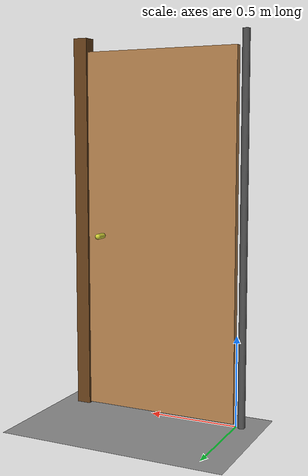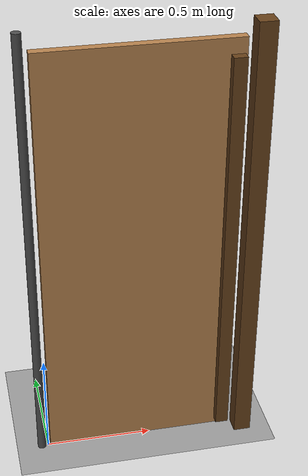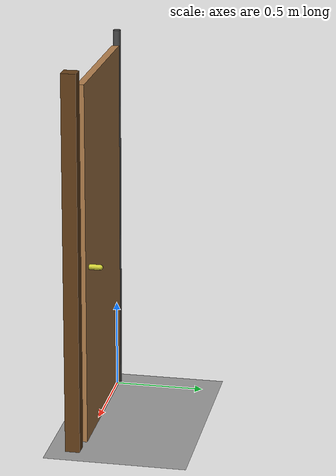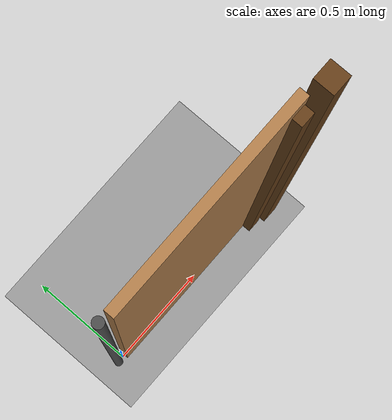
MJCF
<mujoco model="self_closing_door">
  <option timestep="0.002" gravity="0 0 -9.81"/>
  <worldbody>
    <light name="sun" pos="1 -2 4" dir="-0.2 0.4 -1" diffuse="0.8 0.8 0.8"/>
    <geom name="floor" type="plane" size="5 5 0.1" rgba="0.6 0.6 0.6 1"/>
    <body name="frame" pos="0 0 0">
      <geom name="hinge_post" type="cylinder" pos="-0.03 0 1.05" size="0.02 1.05" contype="0" conaffinity="0" rgba="0.3 0.3 0.3 1"/>
      <geom name="jamb_stop" type="box" pos="0.85 -0.04 1.0" size="0.03 0.02 0.95" rgba="0.4 0.25 0.1 1"/>
      <geom name="jamb_post" type="box" pos="0.95 -0.04 1.05" size="0.04 0.04 1.05" contype="0" conaffinity="0" rgba="0.4 0.25 0.1 1"/>
    </body>
    <body name="door" pos="0 0 0">
      <joint name="hinge" type="hinge" pos="0 0 0" axis="0 0 1" stiffness="20" springref="-0.15" damping="8" armature="0.01"/>
      <geom name="door_panel" type="box" pos="0.45 0 1.02" size="0.44 0.02 1.0" mass="20" rgba="0.7 0.5 0.3 1"/>
      <geom name="door_handle" type="capsule" fromto="0.8 0.02 1.0 0.8 0.08 1.0" size="0.015" mass="0.2" contype="0" conaffinity="0" rgba="0.8 0.8 0.2 1"/>
    </body>
  </worldbody>
  <keyframe>
    <key name="start" qpos="1.4" qvel="0"/>
  </keyframe>
</mujoco>
